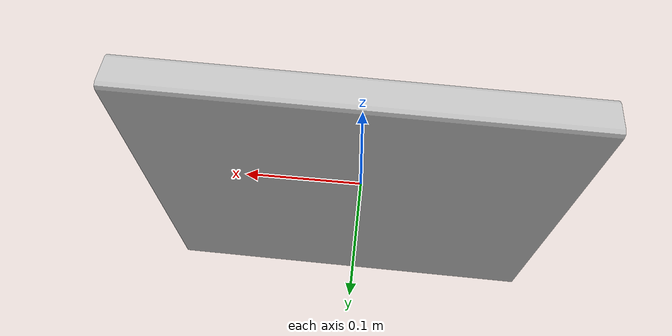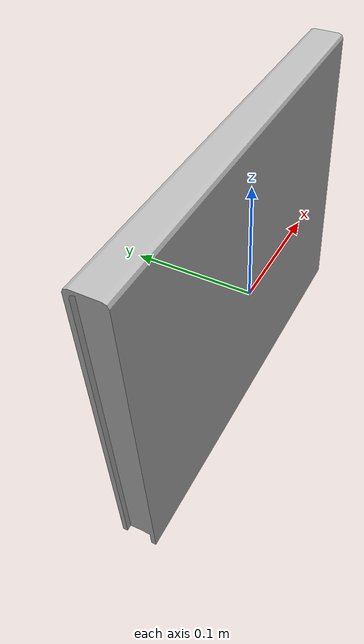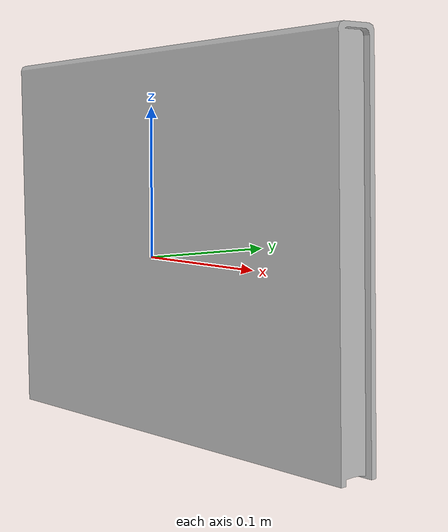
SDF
<?xml version="1.0" ?>
<sdf version="1.4">
  <model name="shelf3_artbook_impressionism">
    <link name="body">
      <pose>0 0 0 0 0 0</pose>
      <inertial>
        <pose>   0.005066   0.014000   0.011210 0 0 0</pose>
        <mass>0.5</mass>
        <inertia>
          <ixx>0.01</ixx>
          <ixy>0</ixy>
          <ixz>0</ixz>
          <iyy>0.01</iyy>
          <iyz>0</iyz>
          <izz>0.01</izz>
        </inertia>
      </inertial>
      <collision name="collision">
        <pose>   0.005066   0.014000   0.011210 0 0 0</pose>
        <geometry>
          <box><size>0.339666 0.028860 0.267628</size></box>
        </geometry>
      </collision>
      <visual name="visual">
        <geometry>
          <mesh>
            <uri>model://bookshelf/shelf3_items/artbook_impressionism/artbook_impressionism.dae</uri>
          </mesh>
        </geometry>
      </visual>
    </link>
  </model>
</sdf>
